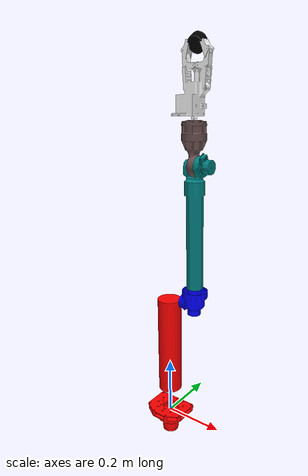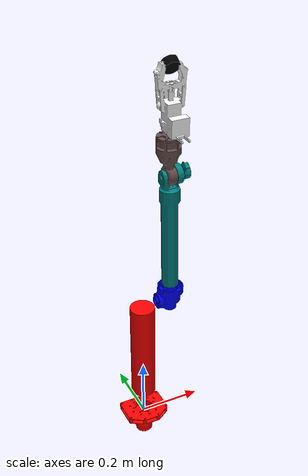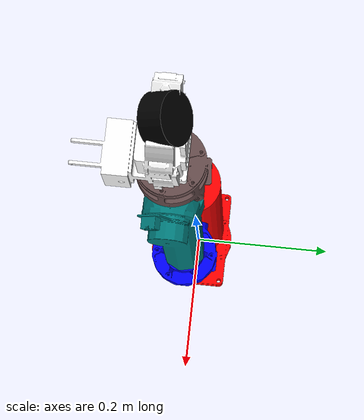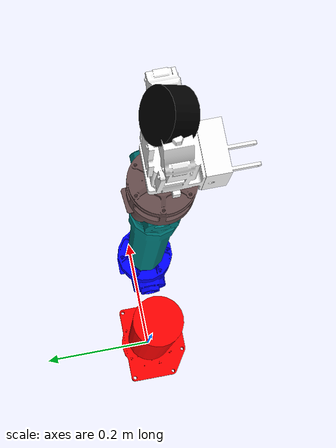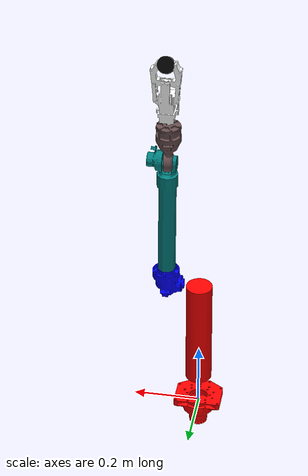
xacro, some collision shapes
<?xml version="1.0"?>

<robot name="arm_description" xmlns:xacro="http://ros.org/wiki/xacro">
  <xacro:include filename="arm_macros.urdf.xacro" />
  <xacro:linkage name="base" origin_xyz="0 0 0" origin_rpy="0 0 0" length="0" radius=".0001" color="0 1 0 1" mass="1000"/>
  <xacro:linkage name="base_rotate" origin_xyz="0 0 0" origin_rpy="0 0 0" length="0.05" radius="0.2" color="1 0 0 1" mass="1" mesh="base_rotate" vOrigin_xyz="0 0 0" vOrigin_rpy="-1.57 3.14 0"/>
  <xacro:joint_rev name="base_rotate" origin_xyz="0 0 0" parent="base" child="base_rotate" axis="0 0 1" lower_limit="-1.57" upper_limit="1.57"/>
  <xacro:linkage name="shoulder" origin_xyz="0 0 0.17215" origin_rpy="0 0 0" length="0.3443" radius="0.04" color="1 0 0 1" mass=".65" mesh="shoulder" vOrigin_xyz=".027 0.085 -0.065" vOrigin_rpy="2.35 -0.1 0.05"/>
  <xacro:joint_rev name="shoulder" origin_xyz="0 0 0.098" parent="base_rotate" child="shoulder" axis="1 0 0" lower_limit="-1.57" upper_limit="1.57"/>
  <xacro:linkage name="elbow" origin_xyz="0.049 0 0" origin_rpy="0 1.57075 0" length="0.098" radius="0.02" color="0 0 1 1" mass=".10" mesh="shoulder_elbow_joint" vOrigin_xyz="0.002 .35 -.235" vOrigin_rpy="3.14 -.1 0"/>
  <xacro:joint_rev name="elbow" origin_xyz="0 0 0.3443" parent="shoulder" child="elbow" axis="1 0 0" lower_limit="-2.35" upper_limit="2.35"/>
  <xacro:linkage name="second_rotate" origin_xyz="0 0 0.2298" origin_rpy="0 0 0" length="0.4596" radius="0.02" color="0 0.5 0.5 1" mass=".65" mesh="elbow" vOrigin_xyz="-0.083 0.35 -0.24" vOrigin_rpy="3.14 -0.15 0"/>
  <xacro:joint_rev name="second_rotate" origin_xyz="0.098 0 0" parent="elbow" child="second_rotate" axis="0 0 1" lower_limit="-3.14" upper_limit="3.14"/>
  <xacro:linkage name="third_tilt" origin_xyz="0 0 0.0674" origin_rpy="0 0 0" length="0.1348" radius="0.02" color=".4 .3 .3 1" mass=".30" mesh="second_tilt" vOrigin_xyz="-.164 0.72 -.255" vOrigin_rpy="-2.355 -0.1 0"/>
  <xacro:joint_rev name="third_tilt" origin_xyz="0 0 0.4596" parent="second_rotate" child="third_tilt" axis="1 0 0" lower_limit="-1.57" upper_limit="1.57"/>
  <xacro:linkage name="third_rotate" origin_xyz="0 0 0.0726" origin_rpy="0 0 0" length="0.1452" radius="0.02" color="1 1 1 1" mass=".30" mesh="end_effector" vOrigin_xyz="0 0 0" vOrigin_rpy="0 0 0"/>
  <xacro:joint_continuous name="third_rotate" origin_xyz="0 0 0.1348" parent="third_tilt" child="third_rotate" axis="0 0 1"/>
  <xacro:linkage name="end_effector" origin_xyz="0 0 0.012" origin_rpy="0 0 0" length="0.025" radius="0.025" color="0 0 0 1" mass=".30"/>
  <!-- The Last Joint is effectively fixed, and exists at the tip of the end effector -->
  <xacro:joint_rev name="end_effector" origin_xyz="0 0 0.1702" origin_rpy="-1 0 0" parent="third_rotate" child="end_effector" axis="0 0 1" lower_limit="0" upper_limit="0" />

</robot>

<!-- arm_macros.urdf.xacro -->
<robot name="arm_description" xmlns:xacro="http://ros.org/wiki/xacro">
<xacro:property name="zero" value="0 0 0" />
<xacro:property name="mesh_path" value="package://arm_description/meshes/arm_2020/" />

<xacro:macro name="linkage" params="name origin_xyz origin_rpy length radius color vOrigin_xyz:=null vOrigin_rpy:=null  mesh:=null mass:=1">
  <link name="${name}">
    <intertial>
      <origin
        xyz="${origin_xyz}"
        rpy="${origin_rpy}" />
      <mass value="${mass}" />
      <inertia
        ixx="0.00035480405869602"
        ixy="-0.00065199857117274"
        ixz="0.000191849153841144"
        iyy="0.00158383903971818"
        iyz="9.59056305777939E-05"
        izz="0.00188232432766353" />
    </intertial>
    <visual>
      <geometry>
        <xacro:if value="${mesh == 'null'}">
          <cylinder
            length="${length}"
            radius="${radius}"/>
        </xacro:if>
        <xacro:unless value="${mesh == 'null'}">
          <mesh scale="0.01 0.01 0.01" filename="${mesh_path}${mesh}.stl"/>
        </xacro:unless>
      </geometry>
      <xacro:if value="${vOrigin_xyz != 'null' and vOrigin_rpy != 'null'}">
          <origin
            xyz="${vOrigin_xyz}"
            rpy="${vOrigin_rpy}" />
        </xacro:if>
        <xacro:unless value="${vOrigin_xyz != 'null' and vOrigin_rpy != 'null'}">
          <origin
            xyz="${origin_xyz}"
            rpy="${origin_rpy}" />
        </xacro:unless>
      <material name="${name}">
        <color rgba="${color}"/>
      </material>
    </visual>
    <collision>
      <geometry>
          <cylinder
            length="${length}"
            radius="${radius}"/>
      </geometry>
      <origin
        xyz="${origin_xyz}"
        rpy="${origin_rpy}" />
    </collision>
  </link>
</xacro:macro>

<xacro:macro name="linkage_box" params="name origin_xyz origin_rpy radius color mass:=1">
  <link name="${name}">
    <intertial>
      <origin
        xyz="${origin_xyz}"
        rpy="${origin_rpy}" />
      <mass value="${mass}" />
      <inertia
        ixx="0.00035480405869602"
        ixy="-0.00065199857117274"
        ixz="0.000191849153841144"
        iyy="0.00158383903971818"
        iyz="9.59056305777939E-05"
        izz="0.00188232432766353" />
    </intertial>
    <visual>
      <geometry>
          <box
            size="${radius} ${radius} ${radius}"/>
      </geometry>
      <origin
        xyz="${origin_xyz}"
        rpy="${origin_rpy}" />
      <material name="${name}">
        <color rgba="${color}"/>
      </material>
    </visual>
    <collision>
      <geometry>
        <box
          size="${radius} ${radius} ${radius}"/>
      </geometry>
      <origin
        xyz="${origin_xyz}"
        rpy="${origin_rpy}" />
    </collision>
  </link>
</xacro:macro>

<xacro:macro name="joint_rev" params="name origin_xyz origin_rpy:=${zero} parent child axis lower_limit upper_limit">
  <joint
    name="${name}"
    type="revolute">
  <origin
    xyz="${origin_xyz}"
    rpy="${origin_rpy}" />
  <parent
    link="${parent}" />
  <child
    link="${child}" />
    <axis
      xyz="${axis}" />
    <limit
      lower="${lower_limit}"
      upper="${upper_limit}"
      effort="0"
      velocity="0" />
  </joint>
</xacro:macro>

<xacro:macro name="joint_continuous" params="name origin_xyz parent child axis">
  <joint
    name="${name}"
    type="continuous">
  <origin
    xyz="${origin_xyz}" />
  <parent
    link="${parent}" />
  <child
    link="${child}" />
    <axis
      xyz="${axis}" />
  </joint>
</xacro:macro>
</robot>
